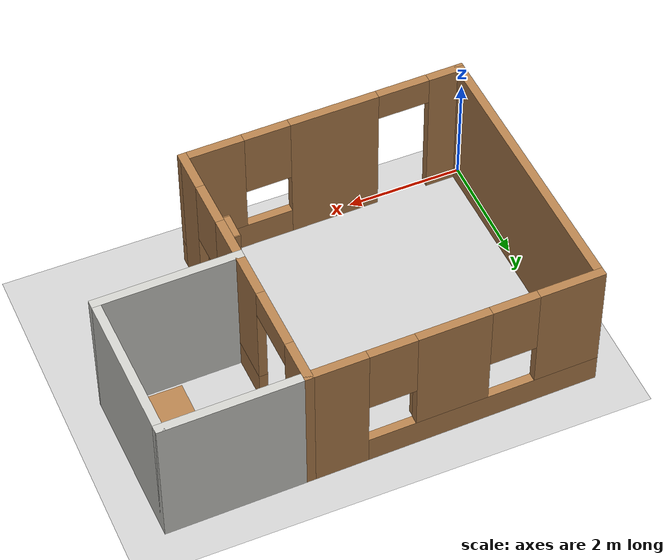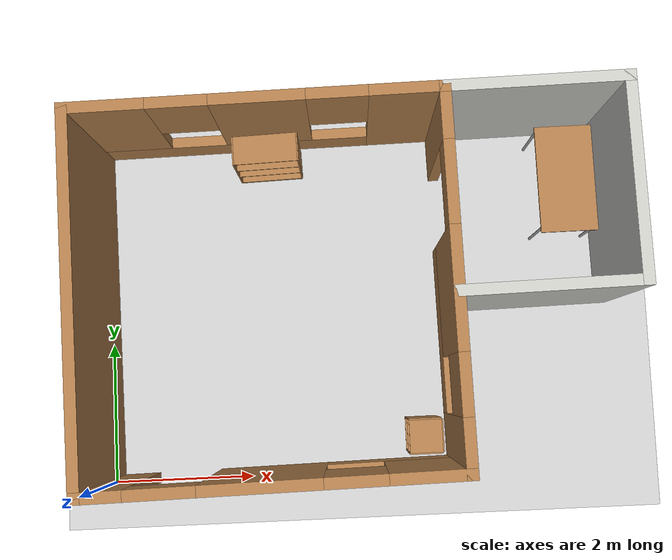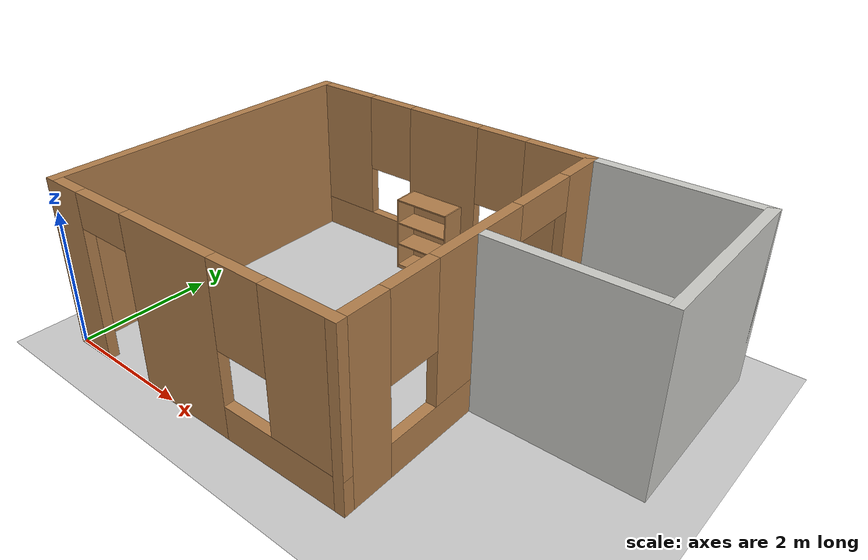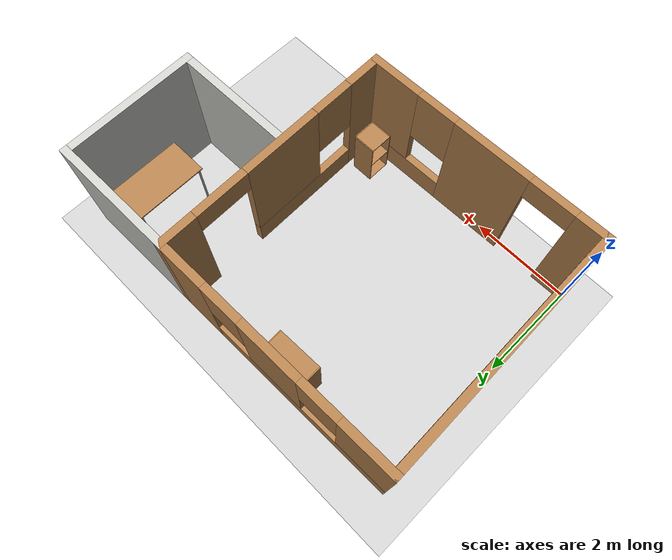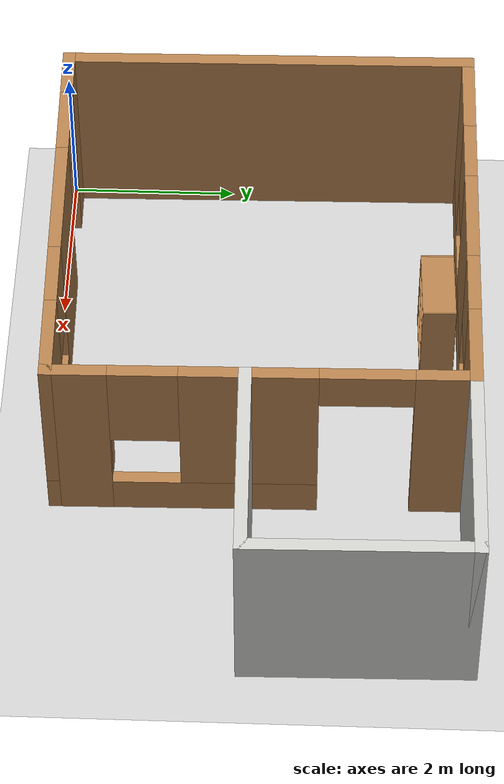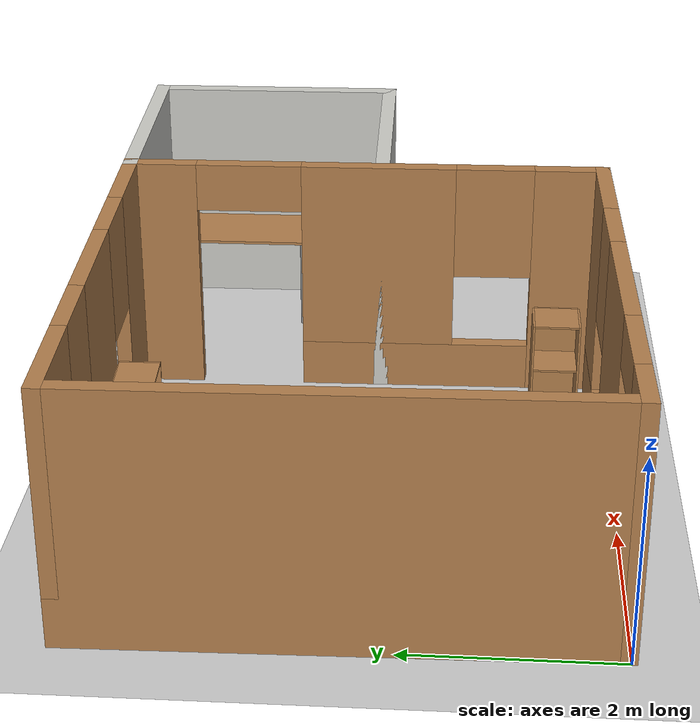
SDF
<sdf version="1.7">
 <world name="default">
  <light name="sun" type="directional">
   <pose>0 0 10 0 -0 0</pose>
   <diffuse>0.8 0.8 0.8 1</diffuse>
   <specular>0.2 0.2 0.2 1</specular>
   <attenuation>
    <range>1000</range>
    <constant>0.9</constant>
    <linear>0.01</linear>
    <quadratic>0.001</quadratic>
   </attenuation>
   <direction>-0.5 0.1 -0.9</direction>
   <spot><inner_angle>0</inner_angle><outer_angle>0</outer_angle><falloff>0</falloff></spot>
  </light>
  <model name="ground_plane">
   <static>1</static>
   <link name="link">
    <collision name="collision">
     <geometry><plane><normal>0 0 1</normal><size>100 100</size></plane></geometry>
     <surface><friction><ode><mu>100</mu><mu2>50</mu2></ode></friction></surface>
    </collision>
    <visual name="visual">
     <cast_shadows>0</cast_shadows>
     <geometry><plane><normal>0 0 1</normal><size>100 100</size></plane></geometry>
     <material>
      <script><uri>file://media/materials/scripts/gazebo.material</uri><name>Gazebo/Grey</name></script>
     </material>
    </visual>
   </link>
  </model>
  <gravity>0 0 -9.8</gravity>
  <magnetic_field>6e-06 2.3e-05 -4.2e-05</magnetic_field>
  <atmosphere type="adiabatic"/>
  <physics type="ode">
   <max_step_size>0.001</max_step_size>
   <real_time_factor>1</real_time_factor>
   <real_time_update_rate>1000</real_time_update_rate>
  </physics>
  <scene><ambient>0.4 0.4 0.4 1</ambient><background>0.7 0.7 0.7 1</background><shadows>1</shadows></scene>
  <audio><device>default</device></audio>
  <spherical_coordinates>
   <surface_model>EARTH_WGS84</surface_model>
   <latitude_deg>0</latitude_deg>
   <longitude_deg>0</longitude_deg>
   <elevation>0</elevation>
   <heading_deg>0</heading_deg>
  </spherical_coordinates>
  <model name="my_cafe_best">
   <pose>3.62914 2.12809 0 0 0 -1.55394</pose>
   <link name="Wall_0">
    <pose>-2.81051 -1.175 0 0 -0 -1.5708</pose>
    <visual name="Wall_0_Visual_0">
     <pose>-1.97811 0 1.25 0 -0 0</pose>
     <geometry><box><size>1.04379 0.15 2.5</size></box></geometry>
     <material>
      <script><uri>file://media/materials/scripts/gazebo.material</uri><name>Gazebo/Wood</name></script>
      <ambient>1 1 1 1</ambient>
     </material>
     <meta><layer>0</layer></meta>
    </visual>
    <collision name="Wall_0_Collision_0">
     <geometry><box><size>1.04379 0.15 2.5</size></box></geometry>
     <pose>-1.97811 0 1.25 0 -0 0</pose>
    </collision>
    <visual name="Wall_0_Visual_1">
     <pose>0.521894 0 0.25 0 -0 0</pose>
     <geometry><box><size>3.95621 0.15 0.5</size></box></geometry>
     <material>
      <script><uri>file://media/materials/scripts/gazebo.material</uri><name>Gazebo/Wood</name></script>
      <ambient>1 1 1 1</ambient>
     </material>
     <meta><layer>0</layer></meta>
    </visual>
    <collision name="Wall_0_Collision_1">
     <geometry><box><size>3.95621 0.15 0.5</size></box></geometry>
     <pose>0.521894 0 0.25 0 -0 0</pose>
    </collision>
    <visual name="Wall_0_Visual_2">
     <pose>-0.037226 0 1.5 0 -0 0</pose>
     <geometry><box><size>1.23797 0.15 2</size></box></geometry>
     <material>
      <script><uri>file://media/materials/scripts/gazebo.material</uri><name>Gazebo/Wood</name></script>
      <ambient>1 1 1 1</ambient>
     </material>
     <meta><layer>0</layer></meta>
    </visual>
    <collision name="Wall_0_Collision_2">
     <geometry><box><size>1.23797 0.15 2</size></box></geometry>
     <pose>-0.037226 0 1.5 0 -0 0</pose>
    </collision>
    <visual name="Wall_0_Visual_3">
     <pose>1.94088 0 1.5 0 -0 0</pose>
     <geometry><box><size>1.11824 0.15 2</size></box></geometry>
     <material>
      <script><uri>file://media/materials/scripts/gazebo.material</uri><name>Gazebo/Wood</name></script>
      <ambient>1 1 1 1</ambient>
     </material>
     <meta><layer>0</layer></meta>
    </visual>
    <collision name="Wall_0_Collision_3">
     <geometry><box><size>1.11824 0.15 2</size></box></geometry>
     <pose>1.94088 0 1.5 0 -0 0</pose>
    </collision>
    <visual name="Wall_0_Visual_4">
     <pose>-1.05621 0 1.9 0 -0 0</pose>
     <geometry><box><size>0.8 0.15 1.2</size></box></geometry>
     <material>
      <script><uri>file://media/materials/scripts/gazebo.material</uri><name>Gazebo/Wood</name></script>
      <ambient>1 1 1 1</ambient>
     </material>
     <meta><layer>0</layer></meta>
    </visual>
    <collision name="Wall_0_Collision_4">
     <geometry><box><size>0.8 0.15 1.2</size></box></geometry>
     <pose>-1.05621 0 1.9 0 -0 0</pose>
    </collision>
    <visual name="Wall_0_Visual_5">
     <pose>0.98176 0 1.9 0 -0 0</pose>
     <geometry><box><size>0.8 0.15 1.2</size></box></geometry>
     <material>
      <script><uri>file://media/materials/scripts/gazebo.material</uri><name>Gazebo/Wood</name></script>
      <ambient>1 1 1 1</ambient>
     </material>
     <meta><layer>0</layer></meta>
    </visual>
    <collision name="Wall_0_Collision_5">
     <geometry><box><size>0.8 0.15 1.2</size></box></geometry>
     <pose>0.98176 0 1.9 0 -0 0</pose>
    </collision>
   </link>
   <link name="Wall_1">
    <collision name="Wall_1_Collision">
     <geometry><box><size>5 0.15 2.5</size></box></geometry>
     <pose>0 0 1.25 0 -0 0</pose>
    </collision>
    <visual name="Wall_1_Visual">
     <pose>0 0 1.25 0 -0 0</pose>
     <geometry><box><size>5 0.15 2.5</size></box></geometry>
     <material>
      <script><uri>file://media/materials/scripts/gazebo.material</uri><name>Gazebo/Wood</name></script>
      <ambient>1 1 1 1</ambient>
     </material>
     <meta><layer>0</layer></meta>
    </visual>
    <pose>-0.385512 -3.6 0 0 -0 0</pose>
   </link>
   <link name="Wall_2">
    <pose>2.03949 -1.175 0 0 -0 1.5708</pose>
    <visual name="Wall_2_Visual_0">
     <pose>-2.1712 0 1.25 0 -0 0</pose>
     <geometry><box><size>0.657604 0.15 2.5</size></box></geometry>
     <material>
      <script><uri>file://media/materials/scripts/gazebo.material</uri><name>Gazebo/Wood</name></script>
      <ambient>1 1 1 1</ambient>
     </material>
     <meta><layer>0</layer></meta>
    </visual>
    <collision name="Wall_2_Collision_0">
     <geometry><box><size>0.657604 0.15 2.5</size></box></geometry>
     <pose>-2.1712 0 1.25 0 -0 0</pose>
    </collision>
    <visual name="Wall_2_Visual_1">
     <pose>-0.165905 0 1.25 0 -0 0</pose>
     <geometry><box><size>1.55298 0.15 2.5</size></box></geometry>
     <material>
      <script><uri>file://media/materials/scripts/gazebo.material</uri><name>Gazebo/Wood</name></script>
      <ambient>1 1 1 1</ambient>
     </material>
     <meta><layer>0</layer></meta>
    </visual>
    <collision name="Wall_2_Collision_1">
     <geometry><box><size>1.55298 0.15 2.5</size></box></geometry>
     <pose>-0.165905 0 1.25 0 -0 0</pose>
    </collision>
    <visual name="Wall_2_Visual_2">
     <pose>1.55529 0 0.25 0 -0 0</pose>
     <geometry><box><size>1.88941 0.15 0.5</size></box></geometry>
     <material>
      <script><uri>file://media/materials/scripts/gazebo.material</uri><name>Gazebo/Wood</name></script>
      <ambient>1 1 1 1</ambient>
     </material>
     <meta><layer>0</layer></meta>
    </visual>
    <collision name="Wall_2_Collision_2">
     <geometry><box><size>1.88941 0.15 0.5</size></box></geometry>
     <pose>1.55529 0 0.25 0 -0 0</pose>
    </collision>
    <visual name="Wall_2_Visual_3">
     <pose>1.95529 0 1.5 0 -0 0</pose>
     <geometry><box><size>1.08941 0.15 2</size></box></geometry>
     <material>
      <script><uri>file://media/materials/scripts/gazebo.material</uri><name>Gazebo/Wood</name></script>
      <ambient>1 1 1 1</ambient>
     </material>
     <meta><layer>0</layer></meta>
    </visual>
    <collision name="Wall_2_Collision_3">
     <geometry><box><size>1.08941 0.15 2</size></box></geometry>
     <pose>1.95529 0 1.5 0 -0 0</pose>
    </collision>
    <visual name="Wall_2_Visual_4">
     <pose>1.01059 0 1.9 0 -0 0</pose>
     <geometry><box><size>0.8 0.15 1.2</size></box></geometry>
     <material>
      <script><uri>file://media/materials/scripts/gazebo.material</uri><name>Gazebo/Wood</name></script>
      <ambient>1 1 1 1</ambient>
     </material>
     <meta><layer>0</layer></meta>
    </visual>
    <collision name="Wall_2_Collision_4">
     <geometry><box><size>0.8 0.15 1.2</size></box></geometry>
     <pose>1.01059 0 1.9 0 -0 0</pose>
    </collision>
    <visual name="Wall_2_Visual_5">
     <pose>-1.3924 0 2.25 0 -0 0</pose>
     <geometry><box><size>0.9 0.15 0.5</size></box></geometry>
     <material>
      <script><uri>file://media/materials/scripts/gazebo.material</uri><name>Gazebo/Wood</name></script>
      <ambient>1 1 1 1</ambient>
     </material>
     <meta><layer>0</layer></meta>
    </visual>
    <collision name="Wall_2_Collision_5">
     <geometry><box><size>0.9 0.15 0.5</size></box></geometry>
     <pose>-1.3924 0 2.25 0 -0 0</pose>
    </collision>
   </link>
   <link name="Wall_3">
    <pose>-0.385512 1.25 0 0 -0 3.14159</pose>
    <visual name="Wall_3_Visual_0">
     <pose>-2.11578 0 1.25 0 -0 0</pose>
     <geometry><box><size>0.768439 0.15 2.5</size></box></geometry>
     <material>
      <script><uri>file://media/materials/scripts/gazebo.material</uri><name>Gazebo/Wood</name></script>
      <ambient>1 1 1 1</ambient>
     </material>
     <meta><layer>0</layer></meta>
    </visual>
    <collision name="Wall_3_Collision_0">
     <geometry><box><size>0.768439 0.15 2.5</size></box></geometry>
     <pose>-2.11578 0 1.25 0 -0 0</pose>
    </collision>
    <visual name="Wall_3_Visual_1">
     <pose>2.12097 0 1.25 0 -0 0</pose>
     <geometry><box><size>0.758052 0.15 2.5</size></box></geometry>
     <material>
      <script><uri>file://media/materials/scripts/gazebo.material</uri><name>Gazebo/Wood</name></script>
      <ambient>1 1 1 1</ambient>
     </material>
     <meta><layer>0</layer></meta>
    </visual>
    <collision name="Wall_3_Collision_1">
     <geometry><box><size>0.758052 0.15 2.5</size></box></geometry>
     <pose>2.12097 0 1.25 0 -0 0</pose>
    </collision>
    <visual name="Wall_3_Visual_2">
     <pose>-0.536059 0 0.25 0 -0 0</pose>
     <geometry><box><size>2.391 0.15 0.5</size></box></geometry>
     <material>
      <script><uri>file://media/materials/scripts/gazebo.material</uri><name>Gazebo/Wood</name></script>
      <ambient>1 1 1 1</ambient>
     </material>
     <meta><layer>0</layer></meta>
    </visual>
    <collision name="Wall_3_Collision_2">
     <geometry><box><size>2.391 0.15 0.5</size></box></geometry>
     <pose>-0.536059 0 0.25 0 -0 0</pose>
    </collision>
    <visual name="Wall_3_Visual_3">
     <pose>-0.136059 0 1.5 0 -0 0</pose>
     <geometry><box><size>1.591 0.15 2</size></box></geometry>
     <material>
      <script><uri>file://media/materials/scripts/gazebo.material</uri><name>Gazebo/Wood</name></script>
      <ambient>1 1 1 1</ambient>
     </material>
     <meta><layer>0</layer></meta>
    </visual>
    <collision name="Wall_3_Collision_3">
     <geometry><box><size>1.591 0.15 2</size></box></geometry>
     <pose>-0.136059 0 1.5 0 -0 0</pose>
    </collision>
    <visual name="Wall_3_Visual_4">
     <pose>-1.33156 0 1.9 0 -0 0</pose>
     <geometry><box><size>0.8 0.15 1.2</size></box></geometry>
     <material>
      <script><uri>file://media/materials/scripts/gazebo.material</uri><name>Gazebo/Wood</name></script>
      <ambient>1 1 1 1</ambient>
     </material>
     <meta><layer>0</layer></meta>
    </visual>
    <collision name="Wall_3_Collision_4">
     <geometry><box><size>0.8 0.15 1.2</size></box></geometry>
     <pose>-1.33156 0 1.9 0 -0 0</pose>
    </collision>
    <visual name="Wall_3_Visual_5">
     <pose>1.2007 0 2.25 0 -0 0</pose>
     <geometry><box><size>1.08251 0.15 0.5</size></box></geometry>
     <material>
      <script><uri>file://media/materials/scripts/gazebo.material</uri><name>Gazebo/Wood</name></script>
      <ambient>1 1 1 1</ambient>
     </material>
     <meta><layer>0</layer></meta>
    </visual>
    <collision name="Wall_3_Collision_5">
     <geometry><box><size>1.08251 0.15 0.5</size></box></geometry>
     <pose>1.2007 0 2.25 0 -0 0</pose>
    </collision>
   </link>
   <link name="Wall_5">
    <collision name="Wall_5_Collision">
     <geometry><box><size>2.5 0.15 2.5</size></box></geometry>
     <pose>0 0 1.25 0 -0 0</pose>
    </collision>
    <visual name="Wall_5_Visual">
     <pose>0 0 1.25 0 -0 0</pose>
     <geometry><box><size>2.5 0.15 2.5</size></box></geometry>
     <material>
      <script><uri>file://media/materials/scripts/gazebo.material</uri><name>Gazebo/CeilingTiled</name></script>
      <ambient>1 1 1 1</ambient>
     </material>
     <meta><layer>0</layer></meta>
    </visual>
    <pose>-2.81051 2.425 0 0 -0 1.5708</pose>
   </link>
   <link name="Wall_6">
    <collision name="Wall_6_Collision">
     <geometry><box><size>2.75 0.15 2.5</size></box></geometry>
     <pose>0 0 1.25 0 -0 0</pose>
    </collision>
    <visual name="Wall_6_Visual">
     <pose>0 0 1.25 0 -0 0</pose>
     <geometry><box><size>2.75 0.15 2.5</size></box></geometry>
     <material>
      <script><uri>file://media/materials/scripts/gazebo.material</uri><name>Gazebo/CeilingTiled</name></script>
      <ambient>1 1 1 1</ambient>
     </material>
     <meta><layer>0</layer></meta>
    </visual>
    <pose>-1.51051 3.6 0 0 -0 0</pose>
   </link>
   <link name="Wall_7">
    <collision name="Wall_7_Collision">
     <geometry><box><size>2.5 0.15 2.5</size></box></geometry>
     <pose>0 0 1.25 0 -0 0</pose>
    </collision>
    <visual name="Wall_7_Visual">
     <pose>0 0 1.25 0 -0 0</pose>
     <geometry><box><size>2.5 0.15 2.5</size></box></geometry>
     <material>
      <script><uri>file://media/materials/scripts/gazebo.material</uri><name>Gazebo/CeilingTiled</name></script>
      <ambient>1 1 1 1</ambient>
     </material>
     <meta><layer>0</layer></meta>
    </visual>
    <pose>-0.210512 2.425 0 0 -0 -1.5708</pose>
   </link>
   <static>1</static>
  </model>
  <model name="table">
   <static>1</static>
   <link name="link">
    <collision name="surface_collision">
     <pose>0 0 1 0 0 0</pose>
     <geometry><box><size>1.5 0.8 0.03</size></box></geometry>
     <surface><friction><ode><mu>0.6</mu><mu2>0.6</mu2></ode></friction></surface>
    </collision>
    <visual name="surface_visual">
     <pose>0 0 1 0 0 0</pose>
     <geometry><box><size>1.5 0.8 0.03</size></box></geometry>
     <material>
      <script><uri>file://media/materials/scripts/gazebo.material</uri><name>Gazebo/Wood</name></script>
     </material>
    </visual>
    <collision name="front_left_leg_collision">
     <pose>0.68 0.38 0.5 0 0 0</pose>
     <geometry><cylinder><radius>0.02</radius><length>1</length></cylinder></geometry>
    </collision>
    <visual name="front_left_leg_visual">
     <pose>0.68 0.38 0.5 0 0 0</pose>
     <geometry><cylinder><radius>0.02</radius><length>1</length></cylinder></geometry>
     <material>
      <script><uri>file://media/materials/scripts/gazebo.material</uri><name>Gazebo/Grey</name></script>
     </material>
    </visual>
    <collision name="front_right_leg_collision">
     <pose>0.68 -0.38 0.5 0 0 0</pose>
     <geometry><cylinder><radius>0.02</radius><length>1</length></cylinder></geometry>
    </collision>
    <visual name="front_right_leg_visual">
     <pose>0.68 -0.38 0.5 0 0 0</pose>
     <geometry><cylinder><radius>0.02</radius><length>1</length></cylinder></geometry>
     <material>
      <script><uri>file://media/materials/scripts/gazebo.material</uri><name>Gazebo/Grey</name></script>
     </material>
    </visual>
    <collision name="back_right_leg_collision">
     <pose>-0.68 -0.38 0.5 0 0 0</pose>
     <geometry><cylinder><radius>0.02</radius><length>1</length></cylinder></geometry>
    </collision>
    <visual name="back_right_leg_visual">
     <pose>-0.68 -0.38 0.5 0 0 0</pose>
     <geometry><cylinder><radius>0.02</radius><length>1</length></cylinder></geometry>
     <material>
      <script><uri>file://media/materials/scripts/gazebo.material</uri><name>Gazebo/Grey</name></script>
     </material>
    </visual>
    <collision name="back_left_leg_collision">
     <pose>-0.68 0.38 0.5 0 0 0</pose>
     <geometry><cylinder><radius>0.02</radius><length>1</length></cylinder></geometry>
    </collision>
    <visual name="back_left_leg_visual">
     <pose>-0.68 0.38 0.5 0 0 0</pose>
     <geometry><cylinder><radius>0.02</radius><length>1</length></cylinder></geometry>
     <material>
      <script><uri>file://media/materials/scripts/gazebo.material</uri><name>Gazebo/Grey</name></script>
     </material>
    </visual>
   </link>
   <pose>6.62202 4.01577 0 0 0 -1.56256</pose>
  </model>
  <model name="cabinet">
   <static>1</static>
   <link name="cabinet_bottom_plate">
    <inertial>
     <pose>0 0 -1 0 -0 0</pose>
     <inertia><ixx>2.05</ixx><ixy>0</ixy><ixz>0</ixz><iyy>2.05</iyy><iyz>0</iyz><izz>2.05</izz></inertia>
     <mass>25</mass>
    </inertial>
    <collision name="cabinet_bottom_plate_geom">
     <pose>0 0 0.01 0 -0 0</pose>
     <geometry><box><size>0.45 0.45 0.02</size></box></geometry>
    </collision>
    <visual name="cabinet_bottom_plate_geom_visual">
     <pose>0 0 0.01 0 -0 0</pose>
     <geometry><box><size>0.45 0.45 0.02</size></box></geometry>
     <material>
      <script><uri>file://media/materials/scripts/gazebo.material</uri><name>Gazebo/Wood</name></script>
     </material>
    </visual>
    <collision name="cabinet_bottom_plate_geom_cabinet_back_plate">
     <pose>0.235 0 0.51 0 -0 0</pose>
     <geometry><box><size>0.02 0.45 1.02</size></box></geometry>
    </collision>
    <visual name="cabinet_bottom_plate_geom_cabinet_back_plate_visual">
     <pose>0.235 0 0.51 0 -0 0</pose>
     <geometry><box><size>0.02 0.45 1.02</size></box></geometry>
     <material>
      <script><uri>file://media/materials/scripts/gazebo.material</uri><name>Gazebo/Wood</name></script>
     </material>
    </visual>
    <collision name="cabinet_bottom_plate_geom_cabinet_left_plate">
     <pose>0 0.235 0.51 0 -0 0</pose>
     <geometry><box><size>0.45 0.02 1.02</size></box></geometry>
    </collision>
    <visual name="cabinet_bottom_plate_geom_cabinet_left_plate_visual">
     <pose>0 0.235 0.51 0 -0 0</pose>
     <geometry><box><size>0.45 0.02 1.02</size></box></geometry>
     <material>
      <script><uri>file://media/materials/scripts/gazebo.material</uri><name>Gazebo/Wood</name></script>
     </material>
    </visual>
    <collision name="cabinet_bottom_plate_geom_cabinet_middle_plate">
     <pose>0 0 0.51 0 -0 0</pose>
     <geometry><box><size>0.45 0.45 0.02</size></box></geometry>
    </collision>
    <visual name="cabinet_bottom_plate_geom_cabinet_middle_plate_visual">
     <pose>0 0 0.51 0 -0 0</pose>
     <geometry><box><size>0.45 0.45 0.02</size></box></geometry>
     <material>
      <script><uri>file://media/materials/scripts/gazebo.material</uri><name>Gazebo/Wood</name></script>
     </material>
    </visual>
    <collision name="cabinet_bottom_plate_geom_cabinet_right_plate">
     <pose>0 -0.235 0.51 0 -0 0</pose>
     <geometry><box><size>0.45 0.02 1.02</size></box></geometry>
    </collision>
    <visual name="cabinet_bottom_plate_geom_cabinet_right_plate_visual">
     <pose>0 -0.235 0.51 0 -0 0</pose>
     <geometry><box><size>0.45 0.02 1.02</size></box></geometry>
     <material>
      <script><uri>file://media/materials/scripts/gazebo.material</uri><name>Gazebo/Wood</name></script>
     </material>
    </visual>
    <collision name="cabinet_bottom_plate_geom_cabinet_top_plate">
     <pose>0 0 1.01 0 -0 0</pose>
     <geometry><box><size>0.45 0.45 0.02</size></box></geometry>
    </collision>
    <visual name="cabinet_bottom_plate_geom_cabinet_top_plate_visual">
     <pose>0 0 1.01 0 -0 0</pose>
     <geometry><box><size>0.45 0.45 0.02</size></box></geometry>
     <material>
      <script><uri>file://media/materials/scripts/gazebo.material</uri><name>Gazebo/Wood</name></script>
     </material>
    </visual>
   </link>
   <pose>4.47499 0.522883 0 0 -0 0</pose>
  </model>
  <model name="bookshelf">
   <static>1</static>
   <link name="link">
    <inertial><mass>1</mass></inertial>
    <collision name="back">
     <pose>0 0.005 0.6 0 -0 0</pose>
     <geometry><box><size>0.9 0.01 1.2</size></box></geometry>
    </collision>
    <visual name="visual1">
     <pose>0 0.005 0.6 0 -0 0</pose>
     <geometry><box><size>0.9 0.01 1.2</size></box></geometry>
     <material>
      <script><uri>file://media/materials/scripts/gazebo.material</uri><name>Gazebo/Wood</name></script>
     </material>
    </visual>
    <collision name="left_side">
     <pose>0.45 -0.195 0.6 0 -0 0</pose>
     <geometry><box><size>0.02 0.4 1.2</size></box></geometry>
    </collision>
    <visual name="visual2">
     <pose>0.45 -0.195 0.6 0 -0 0</pose>
     <geometry><box><size>0.02 0.4 1.2</size></box></geometry>
     <material>
      <script><uri>file://media/materials/scripts/gazebo.material</uri><name>Gazebo/Wood</name></script>
     </material>
    </visual>
    <collision name="right_side">
     <pose>-0.45 -0.195 0.6 0 -0 0</pose>
     <geometry><box><size>0.02 0.4 1.2</size></box></geometry>
    </collision>
    <visual name="visual3">
     <pose>-0.45 -0.195 0.6 0 -0 0</pose>
     <geometry><box><size>0.02 0.4 1.2</size></box></geometry>
     <material>
      <script><uri>file://media/materials/scripts/gazebo.material</uri><name>Gazebo/Wood</name></script>
     </material>
    </visual>
    <collision name="bottom">
     <pose>0 -0.195 0.03 0 -0 0</pose>
     <geometry><box><size>0.88 0.4 0.06</size></box></geometry>
    </collision>
    <visual name="visual4">
     <pose>0 -0.195 0.03 0 -0 0</pose>
     <geometry><box><size>0.88 0.4 0.06</size></box></geometry>
     <material>
      <script><uri>file://media/materials/scripts/gazebo.material</uri><name>Gazebo/Wood</name></script>
     </material>
    </visual>
    <collision name="top">
     <pose>0 -0.195 1.19 0 -0 0</pose>
     <geometry><box><size>0.88 0.4 0.02</size></box></geometry>
    </collision>
    <visual name="visual5">
     <pose>0 -0.195 1.19 0 -0 0</pose>
     <geometry><box><size>0.88 0.4 0.02</size></box></geometry>
     <material>
      <script><uri>file://media/materials/scripts/gazebo.material</uri><name>Gazebo/Wood</name></script>
     </material>
    </visual>
    <collision name="low_shelf">
     <pose>0 -0.195 0.43 0 -0 0</pose>
     <geometry><box><size>0.88 0.4 0.02</size></box></geometry>
    </collision>
    <visual name="visual6">
     <pose>0 -0.195 0.43 0 -0 0</pose>
     <geometry><box><size>0.88 0.4 0.02</size></box></geometry>
     <material>
      <script><uri>file://media/materials/scripts/gazebo.material</uri><name>Gazebo/Wood</name></script>
     </material>
    </visual>
    <collision name="high_shelf">
     <pose>0 -0.195 0.8 0 -0 0</pose>
     <geometry><box><size>0.88 0.4 0.02</size></box></geometry>
    </collision>
    <visual name="visual7">
     <pose>0 -0.195 0.8 0 -0 0</pose>
     <geometry><box><size>0.88 0.4 0.02</size></box></geometry>
     <material>
      <script><uri>file://media/materials/scripts/gazebo.material</uri><name>Gazebo/Wood</name></script>
     </material>
    </visual>
   </link>
   <pose>2.41745 4.77273 0 0 -0 0.032599</pose>
  </model>
 </world>
</sdf>
